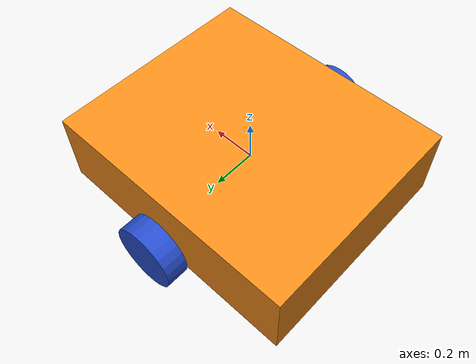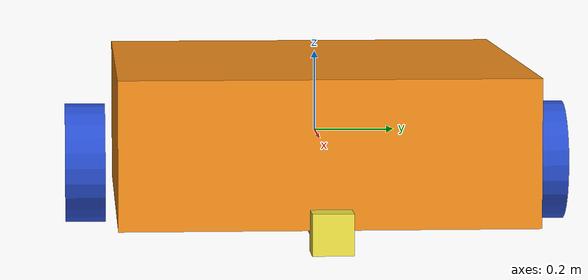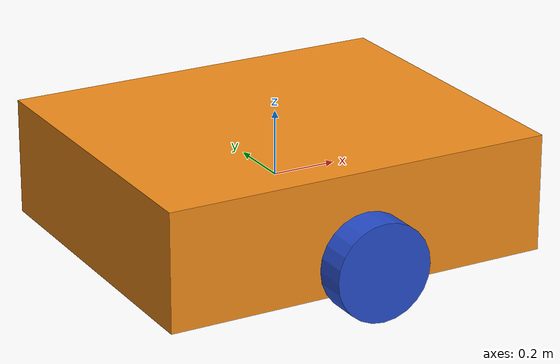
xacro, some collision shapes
<?xml version='1.0'?>

<robot name="myrobot" xmlns:xacro="http://www.ros.org/wiki/xacro">

  <xacro:property name="cameraSize" value="0.05"/>
  <xacro:property name="cameraMass" value="0.1"/>

  <xacro:include filename="$(find sandbox_robot_description)/urdf/mybot.gazebo" />
  <xacro:include filename="$(find sandbox_robot_description)/urdf/materials.xacro" />
  <xacro:include filename="$(find sandbox_robot_description)/urdf/macros.xacro" />

  <link name='base_link'>
    <pose>0 0 0.1 0 0 0</pose>

    <inertial>
      <mass value="15.0"/>
      <origin xyz="0.0 0 0.1" rpy=" 0 0 0"/>
      <inertia ixx="1.9921" ixy="0.0" ixz="0.0" iyy="3.1052" iyz="0.0" izz="1.4371"/>
    </inertial>

    <laser_retro>200</laser_retro>

    <collision name='collision'>
      <geometry>
        <box size="1.21 1.01 0.36"/>
      </geometry>
    </collision>

    <visual name='base_link_visual'>
      <origin xyz="0 0 0" rpy=" 0 0 0"/>
      <geometry>
        <box size="1.21 1.01 0.36"/>
      </geometry>
    </visual>

    <collision name='caster_back_collision'>
      <origin xyz="-0.45 0 -0.18" rpy=" 0 0 0"/>
      <geometry>
        <sphere radius="0.05"/>
      </geometry>
      <surface>
        <friction>
          <ode>
            <mu>0</mu>
            <mu2>0</mu2>
            <slip1>1.0</slip1>
            <slip2>1.0</slip2>
          </ode>
        </friction>
      </surface>
    </collision>

    <visual name='caster_back_visual'>
      <origin xyz="-0.45 0 -0.18" rpy=" 0 0 0"/>
      <geometry>
        <sphere radius="0.05"/>
      </geometry>
    </visual>

    <collision name='caster_front_collision'>
      <origin xyz="0.45 0 -0.18" rpy=" 0 0 0"/>
      <geometry>
        <sphere radius="0.05"/>
      </geometry>
      <surface>
        <friction>
          <ode>
            <mu>0</mu>
            <mu2>0</mu2>
            <slip1>1.0</slip1>
            <slip2>1.0</slip2>
          </ode>
        </friction>
      </surface>
    </collision>

    <visual name='caster_front_visual'>
      <origin xyz="0.45 0 -0.18" rpy=" 0 0 0"/>
      <geometry>
        <sphere radius="0.05"/>
      </geometry>
    </visual>

  </link>

  <link name="left_wheel">
    <!--origin xyz="0.1 0.13 0.1" rpy="0 1.5707 1.5707"/-->
    <collision name="collision">
      <origin xyz="0 0 0" rpy="0 1.5707 1.5707"/>
      <geometry>
        <cylinder radius="0.15" length="0.10"/>
      </geometry>

      <surface>
        <friction>
          <ode>
            <mu>1.0</mu>
            <mu2>1.0</mu2>
            <slip1>1.0</slip1>
            <slip2>1.0</slip2>
          </ode>
        </friction>
      </surface>

    </collision>
    <visual name="left_wheel_visual">
      <origin xyz="0 0 0" rpy="0 1.5707 1.5707"/>
      <geometry>
        <cylinder radius="0.15" length="0.10"/>
      </geometry>
    </visual>
    <inertial>
      <origin xyz="0 0 0" rpy="0 1.5707 1.5707"/>
      <mass value="1.5"/>
      <inertia ixx="0.0096" ixy="0.0" ixz="0.0" iyy="0.0096" iyz="0.0" izz="0.0168"/>
    </inertial>
  </link>

  <link name="right_wheel">
    <!--origin xyz="0.1 -0.13 0.1" rpy="0 1.5707 1.5707"/-->
    <collision name="collision">
      <origin xyz="0 0 0" rpy="0 1.5707 1.5707"/>
      <geometry>
        <cylinder radius="0.15" length="0.10"/>
      </geometry>

      <surface>
        <friction>
          <ode>
            <mu>1.0</mu>
            <mu2>1.0</mu2>
            <slip1>1.0</slip1>
            <slip2>1.0</slip2>
          </ode>
        </friction>
      </surface>

    </collision>
    <visual name="right_wheel_visual">
      <origin xyz="0 0 0" rpy="0 1.5707 1.5707"/>
      <geometry>
        <cylinder radius="0.15" length="0.10"/>
      </geometry>
    </visual>
    <inertial>
      <origin xyz="0 0 0" rpy="0 1.5707 1.5707"/>
      <mass value="1.5"/>
      <inertia ixx="0.0096" ixy="0.0" ixz="0.0" iyy="0.0096" iyz="0.0" izz="0.0168"/>
    </inertial>
  </link>

  <joint type="continuous" name="left_wheel_hinge">
    <origin xyz="0 0.58 -0.08" rpy="0 0 0"/>
    <!--origin xyz="0.1 0.13 0" rpy="0 1.5707 1.5707"/-->
    <child link="left_wheel"/>
    <parent link="base_link"/>
    <axis xyz="0 1 0" rpy="0 0 0"/>
    <limit effort="1" velocity="1000"/>
    <joint_properties damping="0.1" friction="1.0"/>
  </joint>

  <joint type="continuous" name="right_wheel_hinge">
    <origin xyz="0 -0.58 -0.08" rpy="0 0 0"/>
    <!--origin xyz="0.1 -0.13 0" rpy="0 1.5707 1.5707"/-->
    <child link="right_wheel"/>
    <parent link="base_link"/>
    <axis xyz="0 1 0" rpy="0 0 0"/>
    <limit effort="1" velocity="1000"/>
    <joint_properties damping="0.1" friction="1.0"/>
  </joint>

  <joint name="hokuyo_joint" type="fixed">
    <axis xyz="0 1 0" />
    <origin xyz="0.64 0 -0.18" rpy="0 0 0"/>
    <parent link="base_link"/>
    <child link="hokuyo"/>
  </joint>

  <!-- Hokuyo Laser -->
  <link name="hokuyo">
    <collision>
      <origin xyz="0 0 0" rpy="0 0 0"/>
      <geometry>
    <box size="0.1 0.1 0.1"/>
      </geometry>
    </collision>

    <laser_retro>100</laser_retro>

    <visual>
      <origin xyz="0 0 0" rpy="0 0 0"/>
      <geometry>
        <mesh filename="package://sandbox_robot_description/meshes/hokuyo.dae"/>
      </geometry>
    </visual>

    <inertial>
      <mass value="1e-5" />
      <origin xyz="0 0 0" rpy="0 0 0"/>
      <inertia ixx="1e-6" ixy="0" ixz="0" iyy="1e-6" iyz="0" izz="1e-6" />
    </inertial>
  </link>

</robot>
